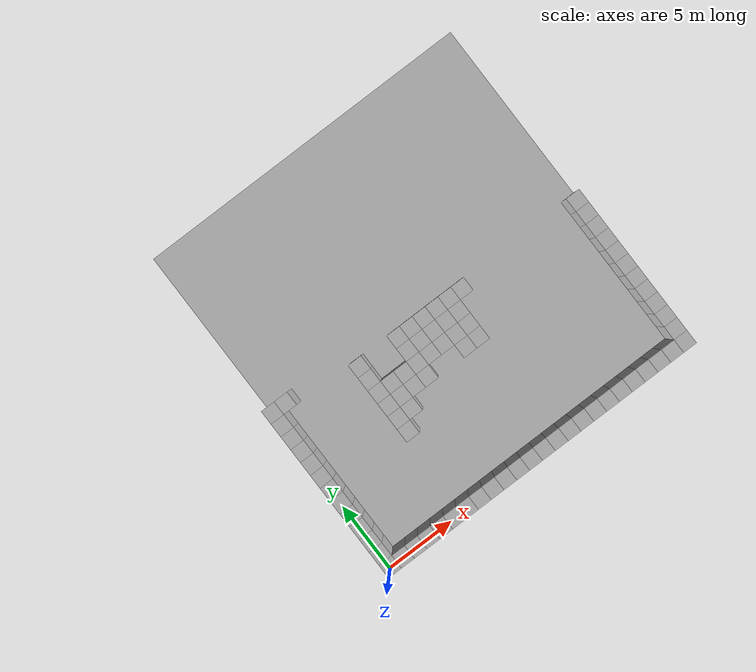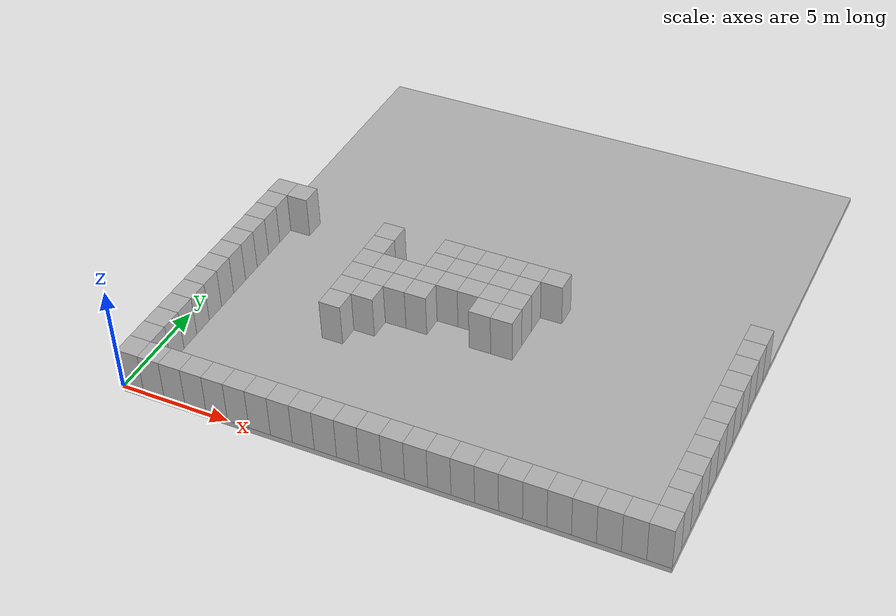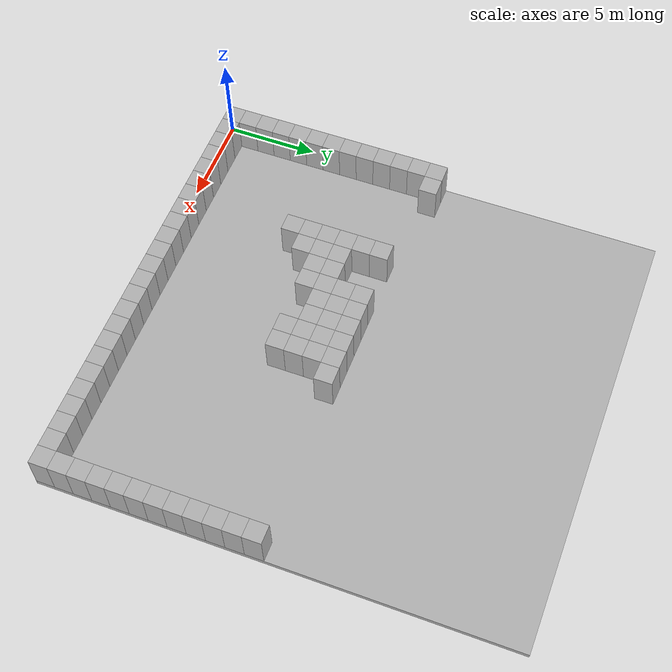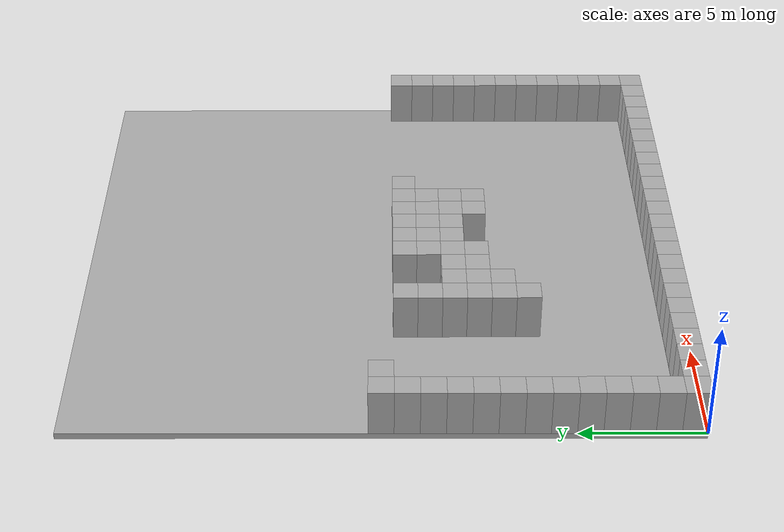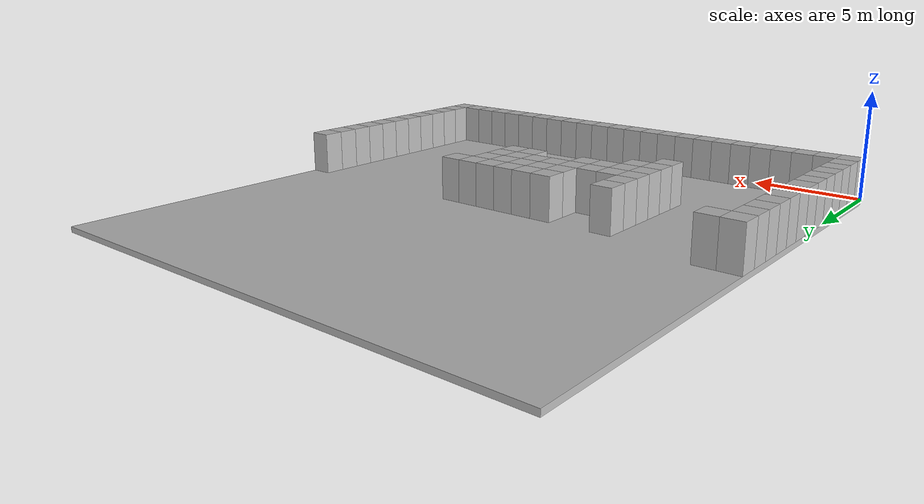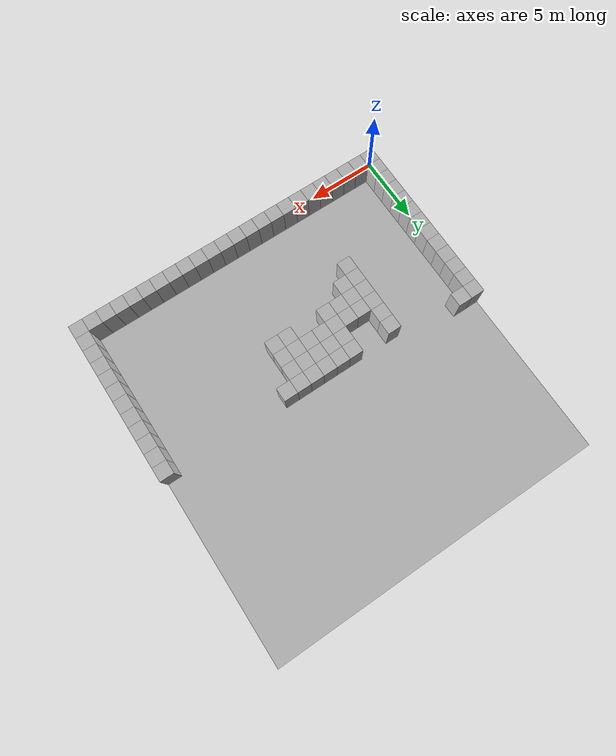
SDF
<sdf version="1.4">
 <world name="default">
  <model name="floor">
   <pose>12.0 12.5 -0.125 0 0 0</pose>
   <static>true</static>
   <link name="link">
    <collision name="collision"><geometry><box><size>24.0 25.0 0.25</size></box></geometry></collision>
    <visual name="visual"><geometry><box><size>24.0 25.0 0.25</size></box></geometry></visual>
   </link>
  </model>
  <model name="box_0_0">
   <pose>0.5 0.5 1.0 0 0 0</pose>
   <static>true</static>
   <link name="link">
    <collision name="collision"><geometry><box><size>1.0 1.0 2.0</size></box></geometry></collision>
    <visual name="visual"><geometry><box><size>1.0 1.0 2.0</size></box></geometry></visual>
   </link>
  </model>
  <model name="box_0_1">
   <pose>0.5 1.5 1.0 0 0 0</pose>
   <static>true</static>
   <link name="link">
    <collision name="collision"><geometry><box><size>1.0 1.0 2.0</size></box></geometry></collision>
    <visual name="visual"><geometry><box><size>1.0 1.0 2.0</size></box></geometry></visual>
   </link>
  </model>
  <model name="box_0_2">
   <pose>0.5 2.5 1.0 0 0 0</pose>
   <static>true</static>
   <link name="link">
    <collision name="collision"><geometry><box><size>1.0 1.0 2.0</size></box></geometry></collision>
    <visual name="visual"><geometry><box><size>1.0 1.0 2.0</size></box></geometry></visual>
   </link>
  </model>
  <model name="box_0_3">
   <pose>0.5 3.5 1.0 0 0 0</pose>
   <static>true</static>
   <link name="link">
    <collision name="collision"><geometry><box><size>1.0 1.0 2.0</size></box></geometry></collision>
    <visual name="visual"><geometry><box><size>1.0 1.0 2.0</size></box></geometry></visual>
   </link>
  </model>
  <model name="box_0_4">
   <pose>0.5 4.5 1.0 0 0 0</pose>
   <static>true</static>
   <link name="link">
    <collision name="collision"><geometry><box><size>1.0 1.0 2.0</size></box></geometry></collision>
    <visual name="visual"><geometry><box><size>1.0 1.0 2.0</size></box></geometry></visual>
   </link>
  </model>
  <model name="box_0_5">
   <pose>0.5 5.5 1.0 0 0 0</pose>
   <static>true</static>
   <link name="link">
    <collision name="collision"><geometry><box><size>1.0 1.0 2.0</size></box></geometry></collision>
    <visual name="visual"><geometry><box><size>1.0 1.0 2.0</size></box></geometry></visual>
   </link>
  </model>
  <model name="box_0_6">
   <pose>0.5 6.5 1.0 0 0 0</pose>
   <static>true</static>
   <link name="link">
    <collision name="collision"><geometry><box><size>1.0 1.0 2.0</size></box></geometry></collision>
    <visual name="visual"><geometry><box><size>1.0 1.0 2.0</size></box></geometry></visual>
   </link>
  </model>
  <model name="box_0_7">
   <pose>0.5 7.5 1.0 0 0 0</pose>
   <static>true</static>
   <link name="link">
    <collision name="collision"><geometry><box><size>1.0 1.0 2.0</size></box></geometry></collision>
    <visual name="visual"><geometry><box><size>1.0 1.0 2.0</size></box></geometry></visual>
   </link>
  </model>
  <model name="box_0_8">
   <pose>0.5 8.5 1.0 0 0 0</pose>
   <static>true</static>
   <link name="link">
    <collision name="collision"><geometry><box><size>1.0 1.0 2.0</size></box></geometry></collision>
    <visual name="visual"><geometry><box><size>1.0 1.0 2.0</size></box></geometry></visual>
   </link>
  </model>
  <model name="box_0_9">
   <pose>0.5 9.5 1.0 0 0 0</pose>
   <static>true</static>
   <link name="link">
    <collision name="collision"><geometry><box><size>1.0 1.0 2.0</size></box></geometry></collision>
    <visual name="visual"><geometry><box><size>1.0 1.0 2.0</size></box></geometry></visual>
   </link>
  </model>
  <model name="box_0_10">
   <pose>0.5 10.5 1.0 0 0 0</pose>
   <static>true</static>
   <link name="link">
    <collision name="collision"><geometry><box><size>1.0 1.0 2.0</size></box></geometry></collision>
    <visual name="visual"><geometry><box><size>1.0 1.0 2.0</size></box></geometry></visual>
   </link>
  </model>
  <model name="box_0_11">
   <pose>0.5 11.5 1.0 0 0 0</pose>
   <static>true</static>
   <link name="link">
    <collision name="collision"><geometry><box><size>1.0 1.0 2.0</size></box></geometry></collision>
    <visual name="visual"><geometry><box><size>1.0 1.0 2.0</size></box></geometry></visual>
   </link>
  </model>
  <model name="box_0_12">
   <pose>0.5 12.5 1.0 0 0 0</pose>
   <static>true</static>
   <link name="link">
    <collision name="collision"><geometry><box><size>1.0 1.0 2.0</size></box></geometry></collision>
    <visual name="visual"><geometry><box><size>1.0 1.0 2.0</size></box></geometry></visual>
   </link>
  </model>
  <model name="box_1_0">
   <pose>1.5 0.5 1.0 0 0 0</pose>
   <static>true</static>
   <link name="link">
    <collision name="collision"><geometry><box><size>1.0 1.0 2.0</size></box></geometry></collision>
    <visual name="visual"><geometry><box><size>1.0 1.0 2.0</size></box></geometry></visual>
   </link>
  </model>
  <model name="box_1_12">
   <pose>1.5 12.5 1.0 0 0 0</pose>
   <static>true</static>
   <link name="link">
    <collision name="collision"><geometry><box><size>1.0 1.0 2.0</size></box></geometry></collision>
    <visual name="visual"><geometry><box><size>1.0 1.0 2.0</size></box></geometry></visual>
   </link>
  </model>
  <model name="box_2_0">
   <pose>2.5 0.5 1.0 0 0 0</pose>
   <static>true</static>
   <link name="link">
    <collision name="collision"><geometry><box><size>1.0 1.0 2.0</size></box></geometry></collision>
    <visual name="visual"><geometry><box><size>1.0 1.0 2.0</size></box></geometry></visual>
   </link>
  </model>
  <model name="box_3_0">
   <pose>3.5 0.5 1.0 0 0 0</pose>
   <static>true</static>
   <link name="link">
    <collision name="collision"><geometry><box><size>1.0 1.0 2.0</size></box></geometry></collision>
    <visual name="visual"><geometry><box><size>1.0 1.0 2.0</size></box></geometry></visual>
   </link>
  </model>
  <model name="box_4_0">
   <pose>4.5 0.5 1.0 0 0 0</pose>
   <static>true</static>
   <link name="link">
    <collision name="collision"><geometry><box><size>1.0 1.0 2.0</size></box></geometry></collision>
    <visual name="visual"><geometry><box><size>1.0 1.0 2.0</size></box></geometry></visual>
   </link>
  </model>
  <model name="box_5_0">
   <pose>5.5 0.5 1.0 0 0 0</pose>
   <static>true</static>
   <link name="link">
    <collision name="collision"><geometry><box><size>1.0 1.0 2.0</size></box></geometry></collision>
    <visual name="visual"><geometry><box><size>1.0 1.0 2.0</size></box></geometry></visual>
   </link>
  </model>
  <model name="box_6_0">
   <pose>6.5 0.5 1.0 0 0 0</pose>
   <static>true</static>
   <link name="link">
    <collision name="collision"><geometry><box><size>1.0 1.0 2.0</size></box></geometry></collision>
    <visual name="visual"><geometry><box><size>1.0 1.0 2.0</size></box></geometry></visual>
   </link>
  </model>
  <model name="box_6_6">
   <pose>6.5 6.5 1.0 0 0 0</pose>
   <static>true</static>
   <link name="link">
    <collision name="collision"><geometry><box><size>1.0 1.0 2.0</size></box></geometry></collision>
    <visual name="visual"><geometry><box><size>1.0 1.0 2.0</size></box></geometry></visual>
   </link>
  </model>
  <model name="box_6_7">
   <pose>6.5 7.5 1.0 0 0 0</pose>
   <static>true</static>
   <link name="link">
    <collision name="collision"><geometry><box><size>1.0 1.0 2.0</size></box></geometry></collision>
    <visual name="visual"><geometry><box><size>1.0 1.0 2.0</size></box></geometry></visual>
   </link>
  </model>
  <model name="box_6_8">
   <pose>6.5 8.5 1.0 0 0 0</pose>
   <static>true</static>
   <link name="link">
    <collision name="collision"><geometry><box><size>1.0 1.0 2.0</size></box></geometry></collision>
    <visual name="visual"><geometry><box><size>1.0 1.0 2.0</size></box></geometry></visual>
   </link>
  </model>
  <model name="box_6_9">
   <pose>6.5 9.5 1.0 0 0 0</pose>
   <static>true</static>
   <link name="link">
    <collision name="collision"><geometry><box><size>1.0 1.0 2.0</size></box></geometry></collision>
    <visual name="visual"><geometry><box><size>1.0 1.0 2.0</size></box></geometry></visual>
   </link>
  </model>
  <model name="box_6_10">
   <pose>6.5 10.5 1.0 0 0 0</pose>
   <static>true</static>
   <link name="link">
    <collision name="collision"><geometry><box><size>1.0 1.0 2.0</size></box></geometry></collision>
    <visual name="visual"><geometry><box><size>1.0 1.0 2.0</size></box></geometry></visual>
   </link>
  </model>
  <model name="box_6_11">
   <pose>6.5 11.5 1.0 0 0 0</pose>
   <static>true</static>
   <link name="link">
    <collision name="collision"><geometry><box><size>1.0 1.0 2.0</size></box></geometry></collision>
    <visual name="visual"><geometry><box><size>1.0 1.0 2.0</size></box></geometry></visual>
   </link>
  </model>
  <model name="box_7_0">
   <pose>7.5 0.5 1.0 0 0 0</pose>
   <static>true</static>
   <link name="link">
    <collision name="collision"><geometry><box><size>1.0 1.0 2.0</size></box></geometry></collision>
    <visual name="visual"><geometry><box><size>1.0 1.0 2.0</size></box></geometry></visual>
   </link>
  </model>
  <model name="box_7_7">
   <pose>7.5 7.5 1.0 0 0 0</pose>
   <static>true</static>
   <link name="link">
    <collision name="collision"><geometry><box><size>1.0 1.0 2.0</size></box></geometry></collision>
    <visual name="visual"><geometry><box><size>1.0 1.0 2.0</size></box></geometry></visual>
   </link>
  </model>
  <model name="box_7_8">
   <pose>7.5 8.5 1.0 0 0 0</pose>
   <static>true</static>
   <link name="link">
    <collision name="collision"><geometry><box><size>1.0 1.0 2.0</size></box></geometry></collision>
    <visual name="visual"><geometry><box><size>1.0 1.0 2.0</size></box></geometry></visual>
   </link>
  </model>
  <model name="box_7_9">
   <pose>7.5 9.5 1.0 0 0 0</pose>
   <static>true</static>
   <link name="link">
    <collision name="collision"><geometry><box><size>1.0 1.0 2.0</size></box></geometry></collision>
    <visual name="visual"><geometry><box><size>1.0 1.0 2.0</size></box></geometry></visual>
   </link>
  </model>
  <model name="box_8_0">
   <pose>8.5 0.5 1.0 0 0 0</pose>
   <static>true</static>
   <link name="link">
    <collision name="collision"><geometry><box><size>1.0 1.0 2.0</size></box></geometry></collision>
    <visual name="visual"><geometry><box><size>1.0 1.0 2.0</size></box></geometry></visual>
   </link>
  </model>
  <model name="box_8_8">
   <pose>8.5 8.5 1.0 0 0 0</pose>
   <static>true</static>
   <link name="link">
    <collision name="collision"><geometry><box><size>1.0 1.0 2.0</size></box></geometry></collision>
    <visual name="visual"><geometry><box><size>1.0 1.0 2.0</size></box></geometry></visual>
   </link>
  </model>
  <model name="box_8_9">
   <pose>8.5 9.5 1.0 0 0 0</pose>
   <static>true</static>
   <link name="link">
    <collision name="collision"><geometry><box><size>1.0 1.0 2.0</size></box></geometry></collision>
    <visual name="visual"><geometry><box><size>1.0 1.0 2.0</size></box></geometry></visual>
   </link>
  </model>
  <model name="box_9_0">
   <pose>9.5 0.5 1.0 0 0 0</pose>
   <static>true</static>
   <link name="link">
    <collision name="collision"><geometry><box><size>1.0 1.0 2.0</size></box></geometry></collision>
    <visual name="visual"><geometry><box><size>1.0 1.0 2.0</size></box></geometry></visual>
   </link>
  </model>
  <model name="box_9_8">
   <pose>9.5 8.5 1.0 0 0 0</pose>
   <static>true</static>
   <link name="link">
    <collision name="collision"><geometry><box><size>1.0 1.0 2.0</size></box></geometry></collision>
    <visual name="visual"><geometry><box><size>1.0 1.0 2.0</size></box></geometry></visual>
   </link>
  </model>
  <model name="box_9_9">
   <pose>9.5 9.5 1.0 0 0 0</pose>
   <static>true</static>
   <link name="link">
    <collision name="collision"><geometry><box><size>1.0 1.0 2.0</size></box></geometry></collision>
    <visual name="visual"><geometry><box><size>1.0 1.0 2.0</size></box></geometry></visual>
   </link>
  </model>
  <model name="box_9_10">
   <pose>9.5 10.5 1.0 0 0 0</pose>
   <static>true</static>
   <link name="link">
    <collision name="collision"><geometry><box><size>1.0 1.0 2.0</size></box></geometry></collision>
    <visual name="visual"><geometry><box><size>1.0 1.0 2.0</size></box></geometry></visual>
   </link>
  </model>
  <model name="box_9_11">
   <pose>9.5 11.5 1.0 0 0 0</pose>
   <static>true</static>
   <link name="link">
    <collision name="collision"><geometry><box><size>1.0 1.0 2.0</size></box></geometry></collision>
    <visual name="visual"><geometry><box><size>1.0 1.0 2.0</size></box></geometry></visual>
   </link>
  </model>
  <model name="box_10_0">
   <pose>10.5 0.5 1.0 0 0 0</pose>
   <static>true</static>
   <link name="link">
    <collision name="collision"><geometry><box><size>1.0 1.0 2.0</size></box></geometry></collision>
    <visual name="visual"><geometry><box><size>1.0 1.0 2.0</size></box></geometry></visual>
   </link>
  </model>
  <model name="box_10_9">
   <pose>10.5 9.5 1.0 0 0 0</pose>
   <static>true</static>
   <link name="link">
    <collision name="collision"><geometry><box><size>1.0 1.0 2.0</size></box></geometry></collision>
    <visual name="visual"><geometry><box><size>1.0 1.0 2.0</size></box></geometry></visual>
   </link>
  </model>
  <model name="box_10_10">
   <pose>10.5 10.5 1.0 0 0 0</pose>
   <static>true</static>
   <link name="link">
    <collision name="collision"><geometry><box><size>1.0 1.0 2.0</size></box></geometry></collision>
    <visual name="visual"><geometry><box><size>1.0 1.0 2.0</size></box></geometry></visual>
   </link>
  </model>
  <model name="box_10_11">
   <pose>10.5 11.5 1.0 0 0 0</pose>
   <static>true</static>
   <link name="link">
    <collision name="collision"><geometry><box><size>1.0 1.0 2.0</size></box></geometry></collision>
    <visual name="visual"><geometry><box><size>1.0 1.0 2.0</size></box></geometry></visual>
   </link>
  </model>
  <model name="box_11_0">
   <pose>11.5 0.5 1.0 0 0 0</pose>
   <static>true</static>
   <link name="link">
    <collision name="collision"><geometry><box><size>1.0 1.0 2.0</size></box></geometry></collision>
    <visual name="visual"><geometry><box><size>1.0 1.0 2.0</size></box></geometry></visual>
   </link>
  </model>
  <model name="box_11_9">
   <pose>11.5 9.5 1.0 0 0 0</pose>
   <static>true</static>
   <link name="link">
    <collision name="collision"><geometry><box><size>1.0 1.0 2.0</size></box></geometry></collision>
    <visual name="visual"><geometry><box><size>1.0 1.0 2.0</size></box></geometry></visual>
   </link>
  </model>
  <model name="box_11_10">
   <pose>11.5 10.5 1.0 0 0 0</pose>
   <static>true</static>
   <link name="link">
    <collision name="collision"><geometry><box><size>1.0 1.0 2.0</size></box></geometry></collision>
    <visual name="visual"><geometry><box><size>1.0 1.0 2.0</size></box></geometry></visual>
   </link>
  </model>
  <model name="box_11_11">
   <pose>11.5 11.5 1.0 0 0 0</pose>
   <static>true</static>
   <link name="link">
    <collision name="collision"><geometry><box><size>1.0 1.0 2.0</size></box></geometry></collision>
    <visual name="visual"><geometry><box><size>1.0 1.0 2.0</size></box></geometry></visual>
   </link>
  </model>
  <model name="box_12_0">
   <pose>12.5 0.5 1.0 0 0 0</pose>
   <static>true</static>
   <link name="link">
    <collision name="collision"><geometry><box><size>1.0 1.0 2.0</size></box></geometry></collision>
    <visual name="visual"><geometry><box><size>1.0 1.0 2.0</size></box></geometry></visual>
   </link>
  </model>
  <model name="box_12_8">
   <pose>12.5 8.5 1.0 0 0 0</pose>
   <static>true</static>
   <link name="link">
    <collision name="collision"><geometry><box><size>1.0 1.0 2.0</size></box></geometry></collision>
    <visual name="visual"><geometry><box><size>1.0 1.0 2.0</size></box></geometry></visual>
   </link>
  </model>
  <model name="box_12_9">
   <pose>12.5 9.5 1.0 0 0 0</pose>
   <static>true</static>
   <link name="link">
    <collision name="collision"><geometry><box><size>1.0 1.0 2.0</size></box></geometry></collision>
    <visual name="visual"><geometry><box><size>1.0 1.0 2.0</size></box></geometry></visual>
   </link>
  </model>
  <model name="box_12_10">
   <pose>12.5 10.5 1.0 0 0 0</pose>
   <static>true</static>
   <link name="link">
    <collision name="collision"><geometry><box><size>1.0 1.0 2.0</size></box></geometry></collision>
    <visual name="visual"><geometry><box><size>1.0 1.0 2.0</size></box></geometry></visual>
   </link>
  </model>
  <model name="box_12_11">
   <pose>12.5 11.5 1.0 0 0 0</pose>
   <static>true</static>
   <link name="link">
    <collision name="collision"><geometry><box><size>1.0 1.0 2.0</size></box></geometry></collision>
    <visual name="visual"><geometry><box><size>1.0 1.0 2.0</size></box></geometry></visual>
   </link>
  </model>
  <model name="box_13_0">
   <pose>13.5 0.5 1.0 0 0 0</pose>
   <static>true</static>
   <link name="link">
    <collision name="collision"><geometry><box><size>1.0 1.0 2.0</size></box></geometry></collision>
    <visual name="visual"><geometry><box><size>1.0 1.0 2.0</size></box></geometry></visual>
   </link>
  </model>
  <model name="box_13_8">
   <pose>13.5 8.5 1.0 0 0 0</pose>
   <static>true</static>
   <link name="link">
    <collision name="collision"><geometry><box><size>1.0 1.0 2.0</size></box></geometry></collision>
    <visual name="visual"><geometry><box><size>1.0 1.0 2.0</size></box></geometry></visual>
   </link>
  </model>
  <model name="box_13_9">
   <pose>13.5 9.5 1.0 0 0 0</pose>
   <static>true</static>
   <link name="link">
    <collision name="collision"><geometry><box><size>1.0 1.0 2.0</size></box></geometry></collision>
    <visual name="visual"><geometry><box><size>1.0 1.0 2.0</size></box></geometry></visual>
   </link>
  </model>
  <model name="box_13_10">
   <pose>13.5 10.5 1.0 0 0 0</pose>
   <static>true</static>
   <link name="link">
    <collision name="collision"><geometry><box><size>1.0 1.0 2.0</size></box></geometry></collision>
    <visual name="visual"><geometry><box><size>1.0 1.0 2.0</size></box></geometry></visual>
   </link>
  </model>
  <model name="box_13_11">
   <pose>13.5 11.5 1.0 0 0 0</pose>
   <static>true</static>
   <link name="link">
    <collision name="collision"><geometry><box><size>1.0 1.0 2.0</size></box></geometry></collision>
    <visual name="visual"><geometry><box><size>1.0 1.0 2.0</size></box></geometry></visual>
   </link>
  </model>
  <model name="box_14_0">
   <pose>14.5 0.5 1.0 0 0 0</pose>
   <static>true</static>
   <link name="link">
    <collision name="collision"><geometry><box><size>1.0 1.0 2.0</size></box></geometry></collision>
    <visual name="visual"><geometry><box><size>1.0 1.0 2.0</size></box></geometry></visual>
   </link>
  </model>
  <model name="box_14_11">
   <pose>14.5 11.5 1.0 0 0 0</pose>
   <static>true</static>
   <link name="link">
    <collision name="collision"><geometry><box><size>1.0 1.0 2.0</size></box></geometry></collision>
    <visual name="visual"><geometry><box><size>1.0 1.0 2.0</size></box></geometry></visual>
   </link>
  </model>
  <model name="box_15_0">
   <pose>15.5 0.5 1.0 0 0 0</pose>
   <static>true</static>
   <link name="link">
    <collision name="collision"><geometry><box><size>1.0 1.0 2.0</size></box></geometry></collision>
    <visual name="visual"><geometry><box><size>1.0 1.0 2.0</size></box></geometry></visual>
   </link>
  </model>
  <model name="box_16_0">
   <pose>16.5 0.5 1.0 0 0 0</pose>
   <static>true</static>
   <link name="link">
    <collision name="collision"><geometry><box><size>1.0 1.0 2.0</size></box></geometry></collision>
    <visual name="visual"><geometry><box><size>1.0 1.0 2.0</size></box></geometry></visual>
   </link>
  </model>
  <model name="box_17_0">
   <pose>17.5 0.5 1.0 0 0 0</pose>
   <static>true</static>
   <link name="link">
    <collision name="collision"><geometry><box><size>1.0 1.0 2.0</size></box></geometry></collision>
    <visual name="visual"><geometry><box><size>1.0 1.0 2.0</size></box></geometry></visual>
   </link>
  </model>
  <model name="box_18_0">
   <pose>18.5 0.5 1.0 0 0 0</pose>
   <static>true</static>
   <link name="link">
    <collision name="collision"><geometry><box><size>1.0 1.0 2.0</size></box></geometry></collision>
    <visual name="visual"><geometry><box><size>1.0 1.0 2.0</size></box></geometry></visual>
   </link>
  </model>
  <model name="box_19_0">
   <pose>19.5 0.5 1.0 0 0 0</pose>
   <static>true</static>
   <link name="link">
    <collision name="collision"><geometry><box><size>1.0 1.0 2.0</size></box></geometry></collision>
    <visual name="visual"><geometry><box><size>1.0 1.0 2.0</size></box></geometry></visual>
   </link>
  </model>
  <model name="box_20_0">
   <pose>20.5 0.5 1.0 0 0 0</pose>
   <static>true</static>
   <link name="link">
    <collision name="collision"><geometry><box><size>1.0 1.0 2.0</size></box></geometry></collision>
    <visual name="visual"><geometry><box><size>1.0 1.0 2.0</size></box></geometry></visual>
   </link>
  </model>
  <model name="box_21_0">
   <pose>21.5 0.5 1.0 0 0 0</pose>
   <static>true</static>
   <link name="link">
    <collision name="collision"><geometry><box><size>1.0 1.0 2.0</size></box></geometry></collision>
    <visual name="visual"><geometry><box><size>1.0 1.0 2.0</size></box></geometry></visual>
   </link>
  </model>
  <model name="box_22_0">
   <pose>22.5 0.5 1.0 0 0 0</pose>
   <static>true</static>
   <link name="link">
    <collision name="collision"><geometry><box><size>1.0 1.0 2.0</size></box></geometry></collision>
    <visual name="visual"><geometry><box><size>1.0 1.0 2.0</size></box></geometry></visual>
   </link>
  </model>
  <model name="box_23_0">
   <pose>23.5 0.5 1.0 0 0 0</pose>
   <static>true</static>
   <link name="link">
    <collision name="collision"><geometry><box><size>1.0 1.0 2.0</size></box></geometry></collision>
    <visual name="visual"><geometry><box><size>1.0 1.0 2.0</size></box></geometry></visual>
   </link>
  </model>
  <model name="box_23_1">
   <pose>23.5 1.5 1.0 0 0 0</pose>
   <static>true</static>
   <link name="link">
    <collision name="collision"><geometry><box><size>1.0 1.0 2.0</size></box></geometry></collision>
    <visual name="visual"><geometry><box><size>1.0 1.0 2.0</size></box></geometry></visual>
   </link>
  </model>
  <model name="box_23_2">
   <pose>23.5 2.5 1.0 0 0 0</pose>
   <static>true</static>
   <link name="link">
    <collision name="collision"><geometry><box><size>1.0 1.0 2.0</size></box></geometry></collision>
    <visual name="visual"><geometry><box><size>1.0 1.0 2.0</size></box></geometry></visual>
   </link>
  </model>
  <model name="box_23_3">
   <pose>23.5 3.5 1.0 0 0 0</pose>
   <static>true</static>
   <link name="link">
    <collision name="collision"><geometry><box><size>1.0 1.0 2.0</size></box></geometry></collision>
    <visual name="visual"><geometry><box><size>1.0 1.0 2.0</size></box></geometry></visual>
   </link>
  </model>
  <model name="box_23_4">
   <pose>23.5 4.5 1.0 0 0 0</pose>
   <static>true</static>
   <link name="link">
    <collision name="collision"><geometry><box><size>1.0 1.0 2.0</size></box></geometry></collision>
    <visual name="visual"><geometry><box><size>1.0 1.0 2.0</size></box></geometry></visual>
   </link>
  </model>
  <model name="box_23_5">
   <pose>23.5 5.5 1.0 0 0 0</pose>
   <static>true</static>
   <link name="link">
    <collision name="collision"><geometry><box><size>1.0 1.0 2.0</size></box></geometry></collision>
    <visual name="visual"><geometry><box><size>1.0 1.0 2.0</size></box></geometry></visual>
   </link>
  </model>
  <model name="box_23_6">
   <pose>23.5 6.5 1.0 0 0 0</pose>
   <static>true</static>
   <link name="link">
    <collision name="collision"><geometry><box><size>1.0 1.0 2.0</size></box></geometry></collision>
    <visual name="visual"><geometry><box><size>1.0 1.0 2.0</size></box></geometry></visual>
   </link>
  </model>
  <model name="box_23_7">
   <pose>23.5 7.5 1.0 0 0 0</pose>
   <static>true</static>
   <link name="link">
    <collision name="collision"><geometry><box><size>1.0 1.0 2.0</size></box></geometry></collision>
    <visual name="visual"><geometry><box><size>1.0 1.0 2.0</size></box></geometry></visual>
   </link>
  </model>
  <model name="box_23_8">
   <pose>23.5 8.5 1.0 0 0 0</pose>
   <static>true</static>
   <link name="link">
    <collision name="collision"><geometry><box><size>1.0 1.0 2.0</size></box></geometry></collision>
    <visual name="visual"><geometry><box><size>1.0 1.0 2.0</size></box></geometry></visual>
   </link>
  </model>
  <model name="box_23_9">
   <pose>23.5 9.5 1.0 0 0 0</pose>
   <static>true</static>
   <link name="link">
    <collision name="collision"><geometry><box><size>1.0 1.0 2.0</size></box></geometry></collision>
    <visual name="visual"><geometry><box><size>1.0 1.0 2.0</size></box></geometry></visual>
   </link>
  </model>
  <model name="box_23_10">
   <pose>23.5 10.5 1.0 0 0 0</pose>
   <static>true</static>
   <link name="link">
    <collision name="collision"><geometry><box><size>1.0 1.0 2.0</size></box></geometry></collision>
    <visual name="visual"><geometry><box><size>1.0 1.0 2.0</size></box></geometry></visual>
   </link>
  </model>
  <model name="box_23_11">
   <pose>23.5 11.5 1.0 0 0 0</pose>
   <static>true</static>
   <link name="link">
    <collision name="collision"><geometry><box><size>1.0 1.0 2.0</size></box></geometry></collision>
    <visual name="visual"><geometry><box><size>1.0 1.0 2.0</size></box></geometry></visual>
   </link>
  </model>
 </world>
</sdf>
